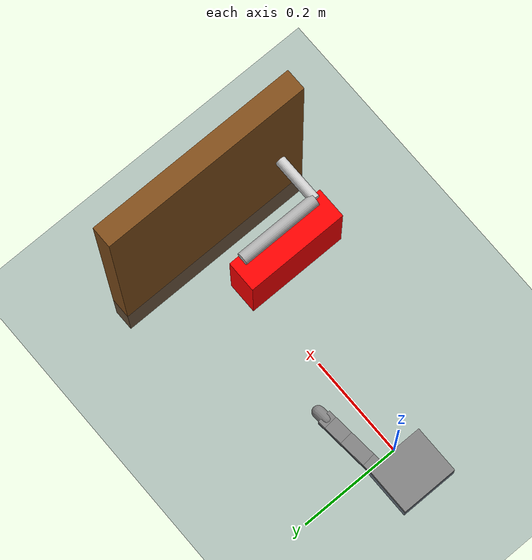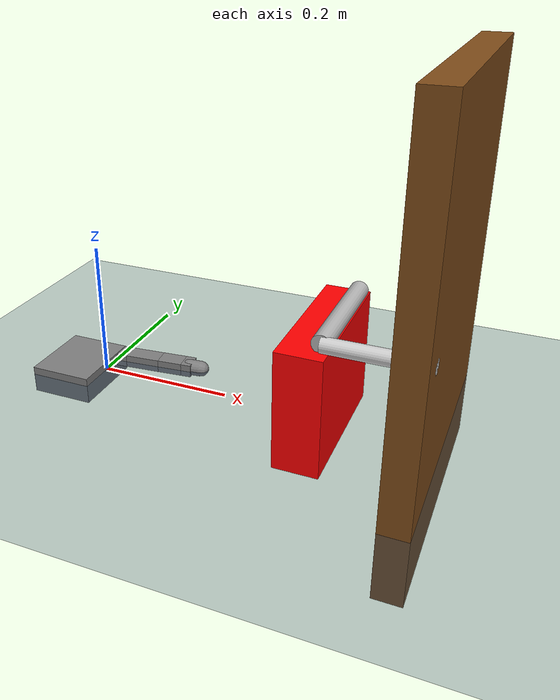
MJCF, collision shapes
<mujoco model="left_hand_doorknob scene">
  <include file="../left_hand_first.xml"/>

  <statistic center="0 0 0" extent="0.3"/>

  <visual>
    <rgba haze="0.15 0.25 0.35 1"/>
    <quality shadowsize="8192"/>
    <global azimuth="220" elevation="-40"/>
  </visual>

  <asset>
    <texture type="skybox" builtin="gradient" rgb1="0.3 0.5 0.7" rgb2="0 0 0" width="512" height="3072"/>
    <texture type="2d" name="groundplane" builtin="checker" mark="edge" rgb1="0.2 0.3 0.4" rgb2="0.1 0.2 0.3"
      markrgb="0.8 0.8 0.8" width="300" height="300"/>
    <material name="groundplane" texture="groundplane" texuniform="true" texrepeat="5 5" reflectance="0.2"/>
  </asset>

  <worldbody>
  <light pos="0 0 2"/>
  <geom name="floor" pos="0 0 0" size="2 2 .05" type="plane" material="groundplane" />

  <body name="door" pos="0.5 0 0.2">
    <geom name="door_panel" type="box" size="0.02 0.2 0.3" rgba="0.5 0.3 0.1 1" margin="0.00"/>

    <body name="handle_root" pos="-0.02 -0.15 0">

      <geom name="handle_neck" type="cylinder" size="0.01 0.065"
            quat="0.707 0 0.707 0" pos="-0.025 0 0" rgba="0.8 0.8 0.8 1" margin="0.00"/>

      <geom name="handle_lever" type="cylinder" size="0.012 0.08"
            pos="-0.09 0.08 0" quat="0.707 0.707 0 0" rgba="0.7 0.7 0.7 1" margin="0.00"/>
      <body name="guide_barrier" pos="-0.11 0.08 -0.09">
        <geom name="guide_box" type="box" size="0.03 0.1 0.08"
              rgba="1 0 0 0.3" contype="1" conaffinity="1"/>
      </body>

    </body>
  </body>
</worldbody>
</mujoco>

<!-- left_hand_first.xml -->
<mujoco model="allegro_left">
  <compiler angle="radian" meshdir="assets" autolimits="true"/>

  <option cone="elliptic" impratio="10"/>

  <default>
    <default class="allegro_left">
      <joint axis="0 1 0" damping=".1"/>
      <position kp="1"/>
      <geom density="800"/>

      <default class="visual">
        <geom type="mesh" contype="0" conaffinity="0" group="2" material="black"/>
        <default class="palm_visual">
          <geom mesh="base_link"/>
        </default>
        <default class="base_visual">
          <geom mesh="link_0.0"/>
        </default>
        <default class="proximal_visual">
          <geom mesh="link_1.0"/>
        </default>
        <default class="medial_visual">
          <geom mesh="link_2.0"/>
        </default>
        <default class="distal_visual">
          <geom mesh="link_3.0"/>
        </default>
        <default class="fingertip_visual">
          <geom pos="0 0 0.0267" material="white" mesh="link_3.0_tip"/>
        </default>
        <default class="thumbtip_visual">
          <geom pos="0 0 0.0423" material="white" mesh="link_15.0_tip"/>
        </default>
      </default>

      <default class="collision">
        <geom group="3" type="box" mass="0"/>
        <default class="palm_collision">
          <geom size="0.0204 0.0565 0.0475" pos="-0.0093 0 -0.0475"/>
        </default>
        <default class="base_collision">
          <geom size="0.0098 0.01375 0.0082" pos="0 0 0.0082"/>
          <default class="thumb_base_collision">
            <geom size="0.0179 0.017 0.02275" pos="-0.0179 0.009 0.0145"/>
          </default>
        </default>
        <default class="proximal_collision">
          <geom size="0.0098 0.01375 0.027" pos="0 0 0.027"/>
          <default class="thumb_proximal_collision">
            <geom size="0.0098 0.01375 0.00885" pos="0 0 0.00885"/>
          </default>
        </default>
        <default class="medial_collision">
          <geom size="0.0098 0.01375 0.0192" pos="0 0 0.0192"/>
          <default class="thumb_medial_collision">
            <geom size="0.0098 0.01375 0.0257" pos="0 0 0.0257"/>
          </default>
        </default>
        <default class="distal_collision">
          <geom size="0.0098 0.01375 0.008" pos="0 0 0.008"/>
          <default class="thumb_distal_collision">
            <geom size="0.0098 0.01375 0.0157" pos="0 0 0.0157"/>
          </default>
        </default>
        <default class="fingertip_collision">
          <geom type="capsule" size="0.012 0.01" pos="0 0 0.019"/>
          <default class="thumbtip_collision">
            <geom type="capsule" size="0.012 0.008" pos="0 0 0.035"/>
          </default>
        </default>
      </default>

      <default class="base">
        <joint axis="0 0 1" range="-0.47 0.47"/>
        <position ctrlrange="-0.47 0.47"/>
      </default>
      <default class="proximal">
        <joint range="-0.196 1.61"/>
        <position ctrlrange="-0.196 1.61"/>
      </default>
      <default class="medial">
        <joint range="-0.174 1.709"/>
        <position ctrlrange="-0.174 1.709"/>
      </default>
      <default class="distal">
        <joint range="-0.227 1.618"/>
        <position ctrlrange="-0.227 1.618"/>
      </default>
    </default>
  </default>

  <asset>
    <material name="black" rgba="0.2 0.2 0.2 1"/>
    <material name="white" rgba="0.9 0.9 0.9 1"/>

    <mesh file="base_link_left.stl"/>
    <mesh file="link_0.0.stl"/>
    <mesh file="link_1.0.stl"/>
    <mesh file="link_2.0.stl"/>
    <mesh file="link_3.0.stl"/>
    <mesh file="link_3.0_tip.stl"/>
    <mesh file="link_12.0_left.stl"/>
    <mesh file="link_13.0.stl"/>
    <mesh file="link_14.0.stl"/>
    <mesh file="link_15.0.stl"/>
    <mesh file="link_15.0_tip.stl"/>
  </asset>

  <worldbody>
    <body name="palm" quat="0 1 0 1" childclass="allegro_left" mocap="true">
      <geom quat="1 -1 0 0" class="palm_visual" mesh="base_link_left"/>
      <geom class="palm_collision"/>
      <!-- First finger -->
      <body name="ff_base" pos="0 -0.0435 -0.001542" quat="0.999048 0.0436194 0 0">
        <joint name="ffj0" class="base"/>
        <geom class="base_visual"/>
        <geom class="base_collision"/>
        <body name="ff_proximal" pos="0 0 0.0164">
          <joint name="ffj1" class="proximal"/>
          <geom class="proximal_visual"/>
          <geom class="proximal_collision"/>
          <body name="ff_medial" pos="0 0 0.054">
            <joint name="ffj2" class="medial"/>
            <geom class="medial_visual"/>
            <geom class="medial_collision"/>
            <body name="ff_distal" pos="0 0 0.0384">
              <joint name="ffj3" class="distal"/>
              <geom class="distal_visual"/>
              <geom class="distal_collision"/>
              <body name="ff_tip">
                <geom class="fingertip_visual"/>
                <geom class="fingertip_collision"/>
                <site name="ff_grasp" pos="0.012 0 0.0237" size="0.001" rgba="1 0 0 1" group="4"/>
              </body>
            </body>
          </body>
        </body>
      </body>
    </body>
  </worldbody>

  <contact>
    <exclude body1="palm" body2="ff_base"/>
  </contact>

  <actuator>
    <position name="ffa0" joint="ffj0" class="base"/>
    <position name="ffa1" joint="ffj1" class="proximal"/>
    <position name="ffa2" joint="ffj2" class="medial"/>
    <position name="ffa3" joint="ffj3" class="distal"/>
  </actuator>
</mujoco>
